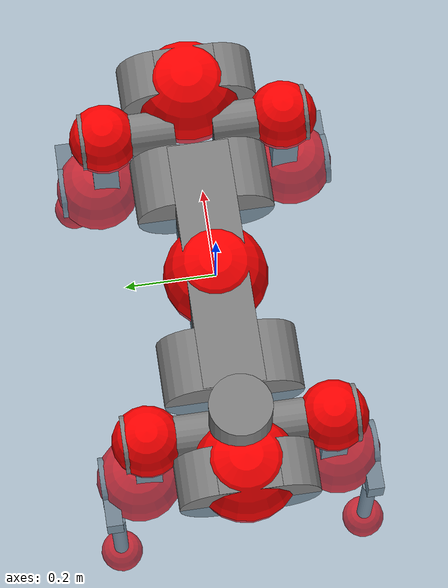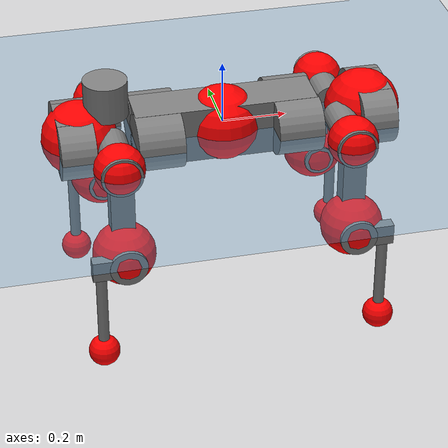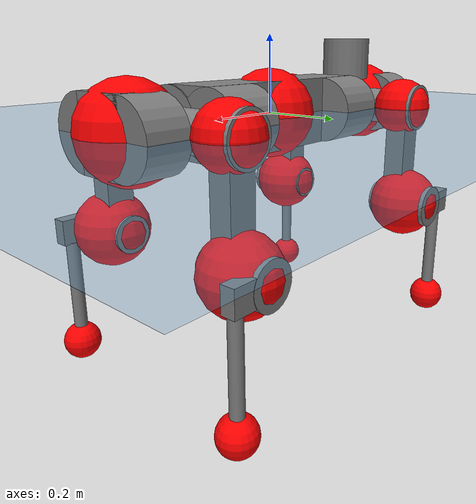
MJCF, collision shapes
<mujoco model="anymal_c">
  <compiler angle="radian" assetdir="assets" balanceinertia="true" inertiafromgeom="false"/>

  <option timestep="0.005" density="1.2" viscosity="2e-05"/>

  <size nkey="1"/>

  <visual>
    <quality shadowsize="8192"/>
    <map shadowclip="0.5"/>
  </visual>

  <default>
    <default class="/">
      <material specular="0" shininess="0.25"/>
      <geom contype="0" conaffinity="0" group="1" solref="-1000 -80"/>
      <site size="0.01 0.005 0.005" group="5"/>
      <general forcelimited="true" forcerange="-80 80" biastype="affine" gainprm="80" biasprm="0 -80 -2"/>
      <default class="anymal_c">
        <joint armature="0.01" damping="0.01" frictionloss="0.1"/>
        <default class="visual">
          <geom type="mesh" group="2"/>
          <default class="visual_zflip"/>
        </default>
        <default class="collision">
          <geom type="cylinder" group="3"/>
          <default class="foot">
            <geom size="0.03 0 0" type="sphere" condim="6" priority="1" friction="0.8 0.02 0.01" solimp="0.015 1 0.03"/>
          </default>
        </default>
      </default>
      <default class="reward_collision_sphere">
        <geom group="5" rgba="1 0 0 1"/>
      </default>
    </default>
  </default>

  <asset>
    <texture type="skybox" colorspace="auto" name="//unnamed_texture_0" builtin="gradient" rgb1="0.95 0.95 0.95" rgb2="0.95 0.95 0.95" width="100" height="600"/>
    <texture type="2d" colorspace="auto" name="texplane" builtin="checker" rgb1="0.345 0.575 0.748" rgb2="0.345 0.575 0.748" markrgb="1 1 1" width="512" height="512"/>
    <texture type="2d" colorspace="linear" name="base" file="base.png"/>
    <texture type="2d" colorspace="linear" name="top_shell" file="top_shell.png"/>
    <texture type="2d" colorspace="linear" name="bottom_shell" file="bottom_shell.png"/>
    <texture type="2d" colorspace="linear" name="remote" file="remote.png"/>
    <texture type="2d" colorspace="linear" name="hatch" file="hatch.png"/>
    <texture type="2d" colorspace="linear" name="handle" file="handle.png"/>
    <texture type="2d" colorspace="linear" name="face" file="face.png"/>
    <texture type="2d" colorspace="linear" name="battery" file="battery.png"/>
    <texture type="2d" colorspace="linear" name="lidar_cage" file="lidar_cage.png"/>
    <texture type="2d" colorspace="linear" name="depth_camera" file="depth_camera.png"/>
    <texture type="2d" colorspace="linear" name="wide_angle_camera" file="wide_angle_camera.png"/>
    <texture type="2d" colorspace="linear" name="lidar" file="lidar.png"/>
    <texture type="2d" colorspace="linear" name="drive" file="drive.png"/>
    <texture type="2d" colorspace="linear" name="hip_l" file="hip_l.png"/>
    <texture type="2d" colorspace="linear" name="shank_l" file="shank_l.png"/>
    <texture type="2d" colorspace="linear" name="foot" file="foot.png"/>
    <texture type="2d" colorspace="linear" name="thigh" file="thigh.png"/>
    <texture type="2d" colorspace="linear" name="shank_r" file="shank_r.png"/>
    <texture type="2d" colorspace="linear" name="hip_r" file="hip_r.png"/>
    <material name="MatPlane" class="/" texture="texplane" texuniform="true" texrepeat="2 2" specular="0.9" shininess="0.5"/>
    <material name="black_plastic" class="/" rgba="0.007 0.007 0.007 1"/>
    <material name="green" class="/" rgba="0.052 0.178 0.033 1"/>
    <material name="red" class="/" rgba="0.178 0.006 0.005 1"/>
    <material name="yellow" class="/" rgba="0.178 0.119 0.006 1"/>
    <material name="lwl" class="/" rgba="0.8 0.8 0.8 1"/>
    <material name="base" class="/" texture="base"/>
    <material name="top_shell" class="/" texture="top_shell"/>
    <material name="bottom_shell" class="/" texture="bottom_shell"/>
    <material name="hip_l" class="/" texture="hip_l"/>
    <material name="thigh" class="/" texture="thigh"/>
    <material name="shank_l" class="/" texture="shank_l"/>
    <material name="foot" class="/" texture="foot"/>
    <material name="hip_r" class="/" texture="hip_r"/>
    <material name="shank" class="/" texture="shank_r"/>
    <material name="hatch" class="/" texture="hatch"/>
    <material name="remote" class="/" texture="remote"/>
    <material name="handle" class="/" texture="handle"/>
    <material name="face" class="/" texture="face"/>
    <material name="depth_camera" class="/" texture="depth_camera"/>
    <material name="wide_angle_camera" class="/" texture="wide_angle_camera"/>
    <material name="battery" class="/" texture="battery"/>
    <material name="lidar_cage" class="/" texture="lidar_cage"/>
    <material name="lidar" class="/" texture="lidar"/>
    <material name="drive" class="/" texture="drive"/>
    <mesh name="base_0" class="/" file="base_0.obj"/>
    <mesh name="base_1" class="/" file="base_1.obj"/>
    <mesh name="base_2" class="/" file="base_2.obj"/>
    <mesh name="base_3" class="/" file="base_3.obj"/>
    <mesh name="base_4" class="/" file="base_4.obj"/>
    <mesh name="base_5" class="/" file="base_5.obj"/>
    <mesh name="top_shell" class="/" file="top_shell.obj"/>
    <mesh name="bottom_shell" class="/" file="bottom_shell.obj"/>
    <mesh name="remote" class="/" file="remote.obj"/>
    <mesh name="handle" class="/" file="handle.obj"/>
    <mesh name="face" class="/" file="face.obj"/>
    <mesh name="wide_angle_camera" class="/" file="wide_angle_camera.obj"/>
    <mesh name="depth_camera" class="/" file="depth_camera.obj"/>
    <mesh name="battery" class="/" file="battery.obj"/>
    <mesh name="lidar_cage" class="/" file="lidar_cage.obj"/>
    <mesh name="lidar" class="/" file="lidar.obj"/>
    <mesh name="drive" class="/" file="drive.obj"/>
    <mesh name="hip_l" class="/" file="hip_l.obj"/>
    <mesh name="thigh" class="/" file="thigh.obj"/>
    <mesh name="shank_l" class="/" file="shank_l.obj"/>
    <mesh name="foot" class="/" file="foot.obj"/>
    <mesh name="hip_r" class="/" file="hip_r.obj"/>
    <mesh name="hatch" class="/" file="hatch.obj"/>
    <mesh name="shank_r" class="/" file="shank_r.obj"/>
  </asset>

  <worldbody>
    <geom name="floor" class="/" size="100 100 0.125" type="plane" group="0" material="MatPlane"/>
    <light name="toplight_shadow" class="/" pos="0 0 5" dir="0.0990148 0.0990148 -0.990148" type="directional" ambient="0.04 0.04 0.04" diffuse="0.55 0.55 0.55" specular="0.12 0.12 0.12"/>
    <light name="toplight_fill" class="/" pos="0 0 5" dir="0.0990148 0.0990148 -0.990148" type="directional" castshadow="false" ambient="0.04 0.04 0.04" diffuse="0.3 0.3 0.3" specular="0.08 0.08 0.08"/>
    <body name="trunk" childclass="anymal_c" pos="0.000510488 -2.01026e-05 -0.000156555" quat="1 -0.000241911 0.000107041 5.03313e-05">
      <inertial pos="0.00149254 -0.00160056 0.0477866" quat="0.501003 0.499474 0.497163 0.502344" mass="17.0582" diaginertia="0.590118 0.454053 0.205574"/>
      <joint name="//unnamed_joint_0" type="free" armature="0" damping="0" frictionloss="0"/>
      <geom name="//unnamed_geom_1" class="visual" material="green" mesh="base_0"/>
      <geom name="//unnamed_geom_2" class="visual" material="yellow" mesh="base_1"/>
      <geom name="//unnamed_geom_3" class="visual" material="red" mesh="base_2"/>
      <geom name="//unnamed_geom_4" class="visual" material="black_plastic" mesh="base_3"/>
      <geom name="//unnamed_geom_5" class="visual" material="lwl" mesh="base_4"/>
      <geom name="//unnamed_geom_6" class="visual" material="base" mesh="base_5"/>
      <geom name="trunk_1" class="collision" size="0.281797 0.0680199 0.0874542" type="box"/>
      <geom name="trunk_2" class="collision" size="0.0874542 0.0704492" pos="0.214608 0.0657293 0" quat="0.707107 0 0.707107 0"/>
      <geom name="trunk_3" class="collision" size="0.0874542 0.0704492" pos="-0.214608 0.0657293 0" quat="0.707107 0 0.707107 0"/>
      <geom name="trunk_4" class="collision" size="0.0874542 0.0704492" pos="0.214608 -0.0657293 0" quat="0.707107 0 0.707107 0"/>
      <geom name="trunk_5" class="collision" size="0.0874542 0.0704492" pos="-0.214608 -0.0657293 0" quat="0.707107 0 0.707107 0"/>
      <geom name="//unnamed_geom_12" class="visual" material="top_shell" mesh="top_shell"/>
      <geom name="//unnamed_geom_13" class="visual" material="bottom_shell" mesh="bottom_shell"/>
      <geom name="//unnamed_geom_14" class="visual" material="remote" mesh="remote"/>
      <geom name="//unnamed_geom_15" class="visual" material="handle" mesh="handle"/>
      <geom name="//unnamed_geom_16" class="visual" pos="0.408988 0 0" quat="1 0 0 0" material="face" mesh="face"/>
      <geom name="trunk_6" class="collision" size="0.0534442 0.0680199 0.0874542" pos="0.463257 0 0" type="box"/>
      <geom name="//unnamed_geom_18" class="collision" size="0.0874542 0.0534442" pos="0.463257 0.0657293 0" quat="0.707107 0 0.707107 0"/>
      <geom name="//unnamed_geom_19" class="collision" size="0.0874542 0.0534442" pos="0.463257 -0.0657293 0" quat="0.707107 0 0.707107 0"/>
      <geom name="//unnamed_geom_20" class="visual" pos="0.455511 0 -0.0289127" quat="0.965926 0 0.258819 0" material="depth_camera" mesh="depth_camera"/>
      <geom name="//unnamed_geom_21" class="visual" pos="0.506178 0 0.014812" material="wide_angle_camera" mesh="wide_angle_camera"/>
      <geom name="//unnamed_geom_22" class="visual_zflip" pos="-0.408988 0 0" quat="0 0 0 1" material="face" mesh="face"/>
      <geom name="trunk_7" class="collision" size="0.0534442 0.0680199 0.0874542" pos="-0.463257 0 0" quat="0 0 0 1" type="box"/>
      <geom name="//unnamed_geom_24" class="collision" size="0.0874542 0.0534442" pos="-0.463257 -0.0657293 0" quat="0 -0.707107 0 0.707107"/>
      <geom name="//unnamed_geom_25" class="collision" size="0.0874542 0.0534442" pos="-0.463257 0.0657293 0" quat="0 -0.707107 0 0.707107"/>
      <geom name="//unnamed_geom_26" class="visual" pos="-0.455511 0 -0.0289127" quat="0 -0.258819 0 0.965926" material="depth_camera" mesh="depth_camera"/>
      <geom name="//unnamed_geom_27" class="visual_zflip" pos="-0.506178 0 0.014812" quat="0 0 0 1" material="wide_angle_camera" mesh="wide_angle_camera"/>
      <geom name="//unnamed_geom_28" class="visual" material="battery" mesh="battery"/>
      <geom name="//unnamed_geom_29" class="visual" pos="0 0.0711693 0.0287226" quat="0.683013 -0.183013 0.183013 0.683013" material="depth_camera" mesh="depth_camera"/>
      <geom name="//unnamed_geom_30" class="visual" pos="0 -0.0711693 0.0287226" quat="0.683013 0.183013 0.183013 -0.683013" material="depth_camera" mesh="depth_camera"/>
      <geom name="//unnamed_geom_31" class="visual" pos="-0.359159 0 0.0727244" quat="1 0 0 0" material="lidar_cage" mesh="lidar_cage"/>
      <geom name="trunk_8" class="collision" size="0.0680199 0.0583028" pos="-0.359159 0 0.132091"/>
      <geom name="//unnamed_geom_33" class="visual" pos="-0.359159 -1.87444e-05 0.140699" quat="0.707107 0 0 -0.707107" material="lidar" mesh="lidar"/>
      <geom name="//unnamed_geom_34" class="visual" pos="0.295912 0.097673 -8.70382e-10" quat="0.258819 0.965926 0 0" material="drive" mesh="drive"/>
      <geom name="//unnamed_geom_35" class="visual" pos="0.295912 -0.097673 8.70382e-10" quat="0.258819 -0.965926 0 0" material="drive" mesh="drive"/>
      <geom name="//unnamed_geom_36" class="visual" pos="-0.295912 0.097673 8.70382e-10" quat="0 0 0.965926 -0.258819" material="drive" mesh="drive"/>
      <geom name="//unnamed_geom_37" class="visual" pos="-0.295912 -0.097673 -8.70382e-10" quat="0 0 -0.965926 -0.258819" material="drive" mesh="drive"/>
      <geom name="//unnamed_geom_38" class="visual" pos="0.114457 0 0.0722297" quat="1 0 0 0" material="hatch" mesh="hatch"/>
      <geom name="//unnamed_geom_39" class="reward_collision_sphere" size="0.116606"/>
      <geom name="//unnamed_geom_40" class="reward_collision_sphere" size="0.116606" pos="0.444016 0 0"/>
      <geom name="//unnamed_geom_41" class="reward_collision_sphere" size="0.116606" pos="-0.444016 0 0"/>
      <site name="imu" pos="0.234938 0.00569363 0.0527651" size="0.00971713"/>
      <camera name="track" pos="0 -1.87798 0" quat="0.707107 0.707107 0 0" mode="trackcom"/>
      <camera name="ego_camera" pos="0.444016 0 -0.0395779" quat="-0.5 -0.5 0.5 0.5"/>
      <body name="LF_HIP" pos="0.296585 0.0980568 0.0007355" quat="0.258987 0.965881 8.88668e-05 0.000494331">
        <inertial pos="0.0574594 -0.0132553 -0.00855234" quat="-0.12821 0.708303 -0.135673 0.68078" mass="2.49956" diaginertia="0.00535787 0.00360163 0.00308539"/>
        <joint name="LF_HAA" pos="0 0 0" axis="0.999984 0.00402392 -0.00401943" stiffness="0.000235259" range="-0.72693 0.475478" armature="0.0106536" damping="0.000405151" frictionloss="0.0968327"/>
        <geom name="//unnamed_geom_42" class="visual" pos="0 -5.12007e-05 8.40967e-06" quat="0.258819 -0.965926 0 0" material="hip_l" mesh="hip_l"/>
        <geom name="//unnamed_geom_43" class="visual" pos="0.0591034 -0.0710061 -0.0413686" quat="0.183013 -0.683013 0.683013 0.183013" material="drive" mesh="drive"/>
        <geom name="//unnamed_geom_44" class="collision" size="0.0485857 0.0680199" pos="0.0591034 -0.0112301 -0.00683213" quat="-0.353553 -0.612372 0.612372 -0.353553"/>
        <body name="LF_THIGH" pos="0.059384 -0.0674765 -0.0411224" quat="0.183539 -0.682896 0.683051 0.182779">
          <inertial pos="0.0296313 0.000293555 -0.241476" quat="0.993053 -0.00567312 -0.0789826 0.0870378" mass="2.81363" diaginertia="0.0278029 0.0218719 0.0039736"/>
          <joint name="LF_HFE" pos="0 0 0" axis="0.999951 -0.000739746 0.00989407" range="-3.12948 3.13872" armature="0.00982468" damping="0.0140469" frictionloss="0.0904725"/>
          <geom name="//unnamed_geom_45" class="visual" pos="0.000949264 1.49582e-06 0" quat="0.707107 0 0 -0.707107" material="thigh" mesh="thigh"/>
          <geom name="//unnamed_geom_46" class="collision" size="0.0631614 0.0388685" pos="0.0394681 0 0" quat="0.5 0.5 -0.5 -0.5"/>
          <geom name="//unnamed_geom_47" class="collision" size="0.0364392 0.0291514 0.137317" pos="0.0296011 0 -0.139823" quat="0.707107 0 0 -0.707107" type="box"/>
          <geom name="//unnamed_geom_48" class="visual" pos="0.0989662 0 -0.281992" quat="1 0 0 0" material="drive" mesh="drive"/>
          <geom name="//unnamed_geom_49" class="collision" size="0.0485857 0.0680199" pos="0.0298971 0 -0.281992" quat="0.707107 0 0.707107 0"/>
          <geom name="//unnamed_geom_50" class="reward_collision_sphere" size="0.0777371" pos="0.0246675 0 0"/>
          <body name="LF_SHANK" pos="0.099762 -0.00137877 -0.284094" quat="1 0.00032008 -0.000319663 -0.000232094">
            <inertial pos="0.00559507 -0.0574147 -0.0794808" quat="0.993231 -0.113633 -0.00157577 -0.0240369" mass="0.544481" diaginertia="0.00957276 0.00672378 0.0010731"/>
            <joint name="LF_KFE" pos="0 0 0" axis="1 -0.000673966 0.00022853" range="-3.14108 3.11992" armature="0.00933266" damping="0.000882161" frictionloss="0.0960927"/>
            <geom name="//unnamed_geom_51" class="visual" pos="0.000309534 0.00165045 0" quat="0.707107 0 0 -0.707107" material="shank_l" mesh="shank_l"/>
            <geom name="LF_kfe_act" class="collision" size="0.0583028 0.0194343" pos="0.019734 0 0" quat="0.5 0.5 -0.5 -0.5"/>
            <geom name="//unnamed_geom_53" class="collision" size="0.0558725 0.0327953 0.0184626" pos="0.019734 -0.053991 0" quat="0.5 0.5 -0.5 -0.5" type="box"/>
            <geom name="//unnamed_geom_54" class="visual" pos="0.0128764 -0.0820524 -0.334404" quat="0.382683 0 0 -0.92388" material="foot" mesh="foot"/>
            <geom name="LF_calf" class="collision" size="0.017005 0.137256" pos="0.0128765 -0.0825842 -0.167202" quat="0.707107 0 0 -0.707107"/>
            <geom name="LF_foot" class="foot" size="0.0324114" pos="0.0128765 -0.0825842 -0.312141" quat="0.707107 0 0 -0.707107"/>
            <geom name="//unnamed_geom_57" class="reward_collision_sphere" size="0.0971713" pos="-0.0493351 0 0"/>
            <geom name="//unnamed_geom_58" class="reward_collision_sphere" size="0.0485857" pos="0.0128765 -0.0825842 -0.312141"/>
            <site name="LF_foot" class="foot" pos="0.0128765 -0.0825842 -0.312141" quat="0.707107 0 0 -0.707107" size="0.00971713"/>
          </body>
        </body>
      </body>
      <body name="RF_HIP" pos="0.296778 -0.0973993 0.00152069" quat="0.258819 -0.965926 -1.51831e-07 4.76535e-07">
        <inertial pos="0.0573751 0.0141117 -0.00778003" quat="0.136467 0.678784 0.12874 0.709968" mass="2.5582" diaginertia="0.00552606 0.00355401 0.00310364"/>
        <joint name="RF_HAA" pos="0 0 0" axis="0.999995 -3.44888e-06 -0.00328095" range="-0.525237 0.727537" armature="0.00908655" damping="0.0105126" frictionloss="0.0901099"/>
        <geom name="//unnamed_geom_59" class="visual" pos="0 5.12002e-05 8.40964e-06" quat="0.258819 0.965926 0 0" material="hip_r" mesh="hip_r"/>
        <geom name="//unnamed_geom_60" class="visual" pos="0.0591034 0.0710061 -0.0413686" quat="0.183013 0.683013 0.683013 -0.183013" material="drive" mesh="drive"/>
        <geom name="//unnamed_geom_61" class="collision" size="0.0485857 0.0680199" pos="0.0591034 0.0112301 -0.00683213" quat="-0.353553 0.612372 0.612372 0.353553"/>
        <body name="RF_THIGH" pos="0.0604033 0.0698934 -0.0411919" quat="0.183054 0.68291 0.683125 -0.182935">
          <inertial pos="0.0306623 0.000235903 -0.243443" quat="0.992723 -0.0113876 -0.0803326 0.0889786" mass="2.73178" diaginertia="0.0282528 0.0215916 0.00389151"/>
          <joint name="RF_HFE" pos="0 0 0" axis="0.999997 -0.00173975 0.00178662" stiffness="0.00506491" range="-3.10087 3.13934" armature="0.00978023" damping="0.00379707" frictionloss="0.108412"/>
          <geom name="//unnamed_geom_62" class="visual" pos="0.000949264 1.49582e-06 0" quat="0.707107 0 0 -0.707107" material="thigh" mesh="thigh"/>
          <geom name="//unnamed_geom_63" class="collision" size="0.0631614 0.0388685" pos="0.0394681 0 0" quat="0.5 0.5 0.5 0.5"/>
          <geom name="//unnamed_geom_64" class="collision" size="0.0364392 0.0291514 0.137317" pos="0.0296011 0 -0.139823" quat="0.707107 0 0 0.707107" type="box"/>
          <geom name="//unnamed_geom_65" class="visual" pos="0.0989662 0 -0.281992" quat="1 0 0 0" material="drive" mesh="drive"/>
          <geom name="//unnamed_geom_66" class="collision" size="0.0485857 0.0680199" pos="0.0298971 0 -0.281992" quat="0.707107 0 0.707107 0"/>
          <geom name="//unnamed_geom_67" class="reward_collision_sphere" size="0.0777371" pos="0.0246675 0 0"/>
          <body name="RF_SHANK" pos="0.0998817 -0.001456 -0.282971" quat="1 0.000140682 2.01797e-06 -4.92187e-05">
            <inertial pos="0.00562898 0.0573914 -0.0778274" quat="0.993134 0.114124 0.000642833 0.0256995" mass="0.538675" diaginertia="0.00928195 0.00668536 0.001066"/>
            <joint name="RF_KFE" pos="0 0 0" axis="0.999999 -0.00102393 -0.000431843" range="-3.12202 3.13097" armature="0.0101527" damping="0.011361" frictionloss="0.0877205"/>
            <geom name="//unnamed_geom_68" class="visual" pos="0.000309533 -0.00165045 0" quat="0.707107 0 0 0.707107" material="shank" mesh="shank_r"/>
            <geom name="RF_kfe_act" class="collision" size="0.0583028 0.0194343" pos="0.019734 0 0" quat="0.5 0.5 0.5 0.5"/>
            <geom name="//unnamed_geom_70" class="collision" size="0.0558725 0.0327953 0.0184626" pos="0.019734 0.053991 0" quat="0.5 0.5 0.5 0.5" type="box"/>
            <geom name="//unnamed_geom_71" class="visual" pos="0.0128765 0.0820524 -0.334404" quat="0.382683 0 0 0.92388" material="foot" mesh="foot"/>
            <geom name="RF_calf" class="collision" size="0.017005 0.137256" pos="0.0128765 0.0825842 -0.167202" quat="0.707107 0 0 0.707107"/>
            <geom name="RF_foot" class="foot" size="0.0272846" pos="0.0128765 0.0825842 -0.312141" quat="0.707107 0 0 0.707107"/>
            <geom name="//unnamed_geom_74" class="reward_collision_sphere" size="0.0971713" pos="-0.0493351 0 0"/>
            <geom name="//unnamed_geom_75" class="reward_collision_sphere" size="0.0485857" pos="0.0128765 0.0825842 -0.312141"/>
            <site name="RF_foot" class="foot" pos="0.0128765 0.0825842 -0.312141" quat="0.707107 0 0 0.707107" size="0.00971713"/>
          </body>
        </body>
      </body>
      <body name="LH_HIP" pos="-0.297235 0.0975801 -0.000423423" quat="0.000130477 9.51026e-05 0.965907 -0.258888">
        <inertial pos="0.0551022 0.0156945 -0.00808639" quat="0.135155 0.680296 0.128134 0.708881" mass="2.52896" diaginertia="0.00546319 0.00362624 0.00302083"/>
        <joint name="LH_HAA" pos="0 0 0" axis="0.999993 0.00169718 0.00333525" stiffness="0.0023886" range="-0.513153 0.677226" armature="0.00890368" damping="0.0134283" frictionloss="0.0973069"/>
        <geom name="//unnamed_geom_76" class="visual" pos="0 5.12002e-05 8.40964e-06" quat="-0.258819 -0.965926 0 0" material="hip_r" mesh="hip_r"/>
        <geom name="//unnamed_geom_77" class="visual" pos="0.0591034 0.0710061 -0.0413686" quat="0.183013 0.683013 0.683013 -0.183013" material="drive" mesh="drive"/>
        <geom name="//unnamed_geom_78" class="collision" size="0.0485857 0.0680199" pos="0.0591034 0.0112301 -0.00683213" quat="-0.353553 0.612372 0.612372 0.353553"/>
        <body name="LH_THIGH" pos="0.0583087 0.0663139 -0.0407772" quat="0.182972 0.683125 0.68292 -0.182983">
          <inertial pos="0.030424 0.000757492 -0.243226" quat="0.992871 -0.00704212 -0.0807814 0.087363" mass="2.80967" diaginertia="0.0282812 0.0218864 0.00392229"/>
          <joint name="LH_HFE" pos="0 0 0" axis="0.999976 0.00297953 -0.00631831" range="-3.14013 3.1288" armature="0.0101053" damping="0.0132935" frictionloss="0.0924662"/>
          <geom name="//unnamed_geom_79" class="visual" pos="0.000949264 1.49582e-06 0" quat="0.707107 0 0 -0.707107" material="thigh" mesh="thigh"/>
          <geom name="//unnamed_geom_80" class="collision" size="0.0631614 0.0388685" pos="0.0394681 0 0" quat="0.5 0.5 -0.5 -0.5"/>
          <geom name="//unnamed_geom_81" class="collision" size="0.0364392 0.0291514 0.137317" pos="0.0296011 0 -0.139823" quat="0.707107 0 0 -0.707107" type="box"/>
          <geom name="//unnamed_geom_82" class="visual" pos="0.0989662 0 -0.281992" quat="1 0 0 0" material="drive" mesh="drive"/>
          <geom name="//unnamed_geom_83" class="collision" size="0.0485857 0.0680199" pos="0.0298971 0 -0.281992" quat="0.707107 0 0.707107 0"/>
          <geom name="//unnamed_geom_84" class="reward_collision_sphere" size="0.0777371" pos="0.0246675 0 0"/>
          <body name="LH_SHANK" pos="0.0995509 -0.000123137 -0.281747" quat="1 0.000195921 -0.000116124 -0.000295418">
            <inertial pos="0.00541276 0.0572971 -0.0795759" quat="0.991679 0.124964 0.00328289 0.0307684" mass="0.540638" diaginertia="0.00955571 0.00679542 0.00103444"/>
            <joint name="LH_KFE" pos="0 0 0" axis="0.999977 0.00430909 -0.0052755" range="-3.14023 3.13908" armature="0.00943699" damping="0.0106678" frictionloss="0.0967178"/>
            <geom name="//unnamed_geom_85" class="visual" pos="0.000309533 -0.00165045 0" quat="-0.707107 0 0 -0.707107" material="shank" mesh="shank_r"/>
            <geom name="LH_kfe_act" class="collision" size="0.0583028 0.0194343" pos="0.019734 0 0" quat="0.5 0.5 -0.5 -0.5"/>
            <geom name="//unnamed_geom_87" class="collision" size="0.0558725 0.0327953 0.0184626" pos="0.019734 0.053991 0" quat="0.5 0.5 -0.5 -0.5" type="box"/>
            <geom name="//unnamed_geom_88" class="visual" pos="0.0128765 0.0820524 -0.334404" quat="-0.382683 0 0 -0.92388" material="foot" mesh="foot"/>
            <geom name="LH_calf" class="collision" size="0.017005 0.137256" pos="0.0128765 0.0825842 -0.167202" quat="0.707107 0 0 -0.707107"/>
            <geom name="LH_foot" class="foot" size="0.0337114" pos="0.0128765 0.0825842 -0.312141" quat="0.707107 0 0 -0.707107"/>
            <geom name="//unnamed_geom_91" class="reward_collision_sphere" size="0.0971713" pos="-0.0493351 0 0"/>
            <geom name="//unnamed_geom_92" class="reward_collision_sphere" size="0.0485857" pos="0.0128765 0.0825842 -0.312141"/>
            <site name="LH_foot" class="foot" pos="0.0128765 0.0825842 -0.312141" quat="0.707107 0 0 -0.707107" size="0.00971713"/>
          </body>
        </body>
      </body>
      <body name="RH_HIP" pos="-0.296001 -0.0998616 0.00102229" quat="5.71168e-05 -0.000351336 -0.965847 -0.259115">
        <inertial pos="0.0542132 -0.0141626 -0.00720774" quat="-0.130584 0.708833 -0.133752 0.680157" mass="2.5766" diaginertia="0.0055368 0.00362429 0.003075"/>
        <joint name="RH_HAA" pos="0 0 0" axis="1 0.000619651 0.000164945" range="-0.74666 0.53442" armature="0.0094893" damping="0.00923894" frictionloss="0.0982596"/>
        <geom name="//unnamed_geom_93" class="visual" pos="0 -5.12007e-05 8.40967e-06" quat="-0.258819 0.965926 0 0" material="hip_l" mesh="hip_l"/>
        <geom name="//unnamed_geom_94" class="visual" pos="0.0591034 -0.0710061 -0.0413686" quat="-0.183013 0.683013 -0.683013 -0.183013" material="drive" mesh="drive"/>
        <geom name="//unnamed_geom_95" class="collision" size="0.0485857 0.0680199" pos="0.0591034 -0.0112301 -0.00683213" quat="0.353553 0.612372 -0.612372 0.353553"/>
        <body name="RH_THIGH" pos="0.0594729 -0.0676615 -0.0404408" quat="-0.183065 0.682951 -0.683034 -0.18311">
          <inertial pos="0.0309448 0.000388286 -0.242682" quat="0.993168 -0.00515976 -0.0806401 0.0841901" mass="2.67013" diaginertia="0.0270926 0.0211766 0.00384644"/>
          <joint name="RH_HFE" pos="0 0 0" axis="0.999993 -0.000956599 -0.00348871" range="-3.13483 3.14761" armature="0.0102111" damping="0.0126271" frictionloss="0.0979744"/>
          <geom name="//unnamed_geom_96" class="visual" pos="0.000949264 1.49582e-06 0" quat="0.707107 0 0 -0.707107" material="thigh" mesh="thigh"/>
          <geom name="//unnamed_geom_97" class="collision" size="0.0631614 0.0388685" pos="0.0394681 0 0" quat="0.5 0.5 0.5 0.5"/>
          <geom name="//unnamed_geom_98" class="collision" size="0.0364392 0.0291514 0.137317" pos="0.0296011 0 -0.139823" quat="0.707107 0 0 0.707107" type="box"/>
          <geom name="//unnamed_geom_99" class="visual" pos="0.0989662 0 -0.281992" quat="1 0 0 0" material="drive" mesh="drive"/>
          <geom name="//unnamed_geom_100" class="collision" size="0.0485857 0.0680199" pos="0.0298971 0 -0.281992" quat="0.707107 0 0.707107 0"/>
          <geom name="//unnamed_geom_101" class="reward_collision_sphere" size="0.0777371" pos="0.0246675 0 0"/>
          <body name="RH_SHANK" pos="0.0973543 0.000558857 -0.282757" quat="1 -0.000290871 0.000270383 -0.000230642">
            <inertial pos="0.0064825 -0.057506 -0.0796135" quat="0.992624 -0.119291 0.00100508 -0.0215908" mass="0.546402" diaginertia="0.00962747 0.00686555 0.00106644"/>
            <joint name="RH_KFE" pos="0 0 0" axis="0.999999 0.00149206 -0.000168129" range="-3.13776 3.15343" armature="0.00877221" damping="0.00337813" frictionloss="0.0971562"/>
            <geom name="//unnamed_geom_102" class="visual" pos="0.000309534 0.00165045 0" quat="0.707107 0 0 -0.707107" material="shank_l" mesh="shank_l"/>
            <geom name="RH_kfe_act" class="collision" size="0.0583028 0.0194343" pos="0.019734 0 0" quat="0.5 0.5 0.5 0.5"/>
            <geom name="//unnamed_geom_104" class="collision" size="0.0558725 0.0327953 0.0184626" pos="0.019734 -0.053991 0" quat="0.5 0.5 0.5 0.5" type="box"/>
            <geom name="//unnamed_geom_105" class="visual" pos="0.0128764 -0.0820524 -0.334404" quat="0.382683 0 0 -0.92388" material="foot" mesh="foot"/>
            <geom name="RH_calf" class="collision" size="0.017005 0.137256" pos="0.0128765 -0.0825842 -0.167202" quat="0.707107 0 0 0.707107"/>
            <geom name="RH_foot" class="foot" size="0.0257204" pos="0.0128765 -0.0825842 -0.312141" quat="0.707107 0 0 0.707107"/>
            <geom name="//unnamed_geom_108" class="reward_collision_sphere" size="0.0971713" pos="-0.0493351 0 0"/>
            <geom name="//unnamed_geom_109" class="reward_collision_sphere" size="0.0485857" pos="0.0128765 -0.0825842 -0.312141"/>
            <site name="RH_foot" class="foot" pos="0.0128765 -0.0825842 -0.312141" quat="0.707107 0 0 0.707107" size="0.00971713"/>
          </body>
        </body>
      </body>
    </body>
  </worldbody>

  <contact>
    <pair class="/" geom1="floor" geom2="LF_foot" name="//unnamed_contact_0"/>
    <pair class="/" geom1="floor" geom2="RF_foot" name="//unnamed_contact_1"/>
    <pair class="/" geom1="floor" geom2="LH_foot" name="//unnamed_contact_2"/>
    <pair class="/" geom1="floor" geom2="RH_foot" name="//unnamed_contact_3"/>
  </contact>

  <actuator>
    <general name="LF_HAA" class="/" joint="LF_HAA" forcerange="-77.3093 77.3093" gainprm="83.6188" biasprm="0 -83.6188 -1.92224"/>
    <general name="LF_HFE" class="/" joint="LF_HFE" forcerange="-79.8499 79.8499" gainprm="83.6188" biasprm="0 -83.6188 -1.92224"/>
    <general name="LF_KFE" class="/" joint="LF_KFE" forcerange="-77.8212 77.8212" gainprm="83.6188" biasprm="0 -83.6188 -1.92224"/>
    <general name="RF_HAA" class="/" joint="RF_HAA" forcerange="-79.2912 79.2912" gainprm="83.6188" biasprm="0 -83.6188 -1.92224"/>
    <general name="RF_HFE" class="/" joint="RF_HFE" forcerange="-76.5285 76.5285" gainprm="83.6188" biasprm="0 -83.6188 -1.92224"/>
    <general name="RF_KFE" class="/" joint="RF_KFE" forcerange="-74.6381 74.6381" gainprm="83.6188" biasprm="0 -83.6188 -1.92224"/>
    <general name="LH_HAA" class="/" joint="LH_HAA" forcerange="-78.0275 78.0275" gainprm="83.6188" biasprm="0 -83.6188 -1.92224"/>
    <general name="LH_HFE" class="/" joint="LH_HFE" forcerange="-74.8539 74.8539" gainprm="83.6188" biasprm="0 -83.6188 -1.92224"/>
    <general name="LH_KFE" class="/" joint="LH_KFE" forcerange="-77.6257 77.6257" gainprm="83.6188" biasprm="0 -83.6188 -1.92224"/>
    <general name="RH_HAA" class="/" joint="RH_HAA" forcerange="-80.2854 80.2854" gainprm="83.6188" biasprm="0 -83.6188 -1.92224"/>
    <general name="RH_HFE" class="/" joint="RH_HFE" forcerange="-72.7374 72.7374" gainprm="83.6188" biasprm="0 -83.6188 -1.92224"/>
    <general name="RH_KFE" class="/" joint="RH_KFE" forcerange="-80.9126 80.9126" gainprm="83.6188" biasprm="0 -83.6188 -1.92224"/>
  </actuator>

  <sensor>
    <gyro site="imu" name="imu_angular_velocity"/>
    <velocimeter site="imu" name="imu_linear_velocity"/>
    <framelinvel objtype="site" objname="LF_foot" name="LF_foot_global_linear_velocity"/>
    <framelinvel objtype="site" objname="RF_foot" name="RF_foot_global_linear_velocity"/>
    <framelinvel objtype="site" objname="LH_foot" name="LH_foot_global_linear_velocity"/>
    <framelinvel objtype="site" objname="RH_foot" name="RH_foot_global_linear_velocity"/>
  </sensor>

  <keyframe>
    <key name="home" qpos="0 0 0.55 1 0 0 0 0 0.4 -0.8 0 -0.4 0.8 0 -0.4 0.8 0 0.4 -0.8"/>
  </keyframe>
</mujoco>
